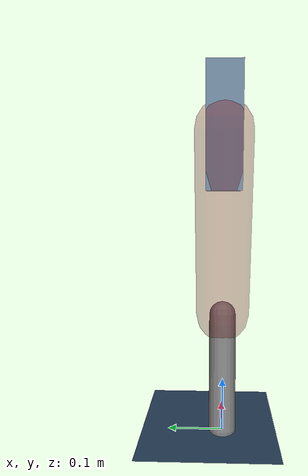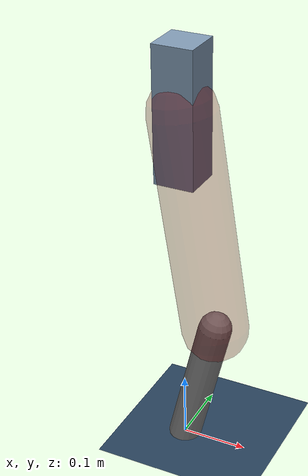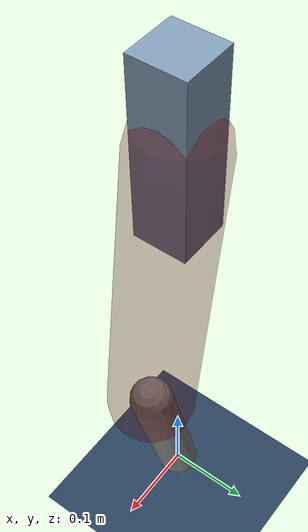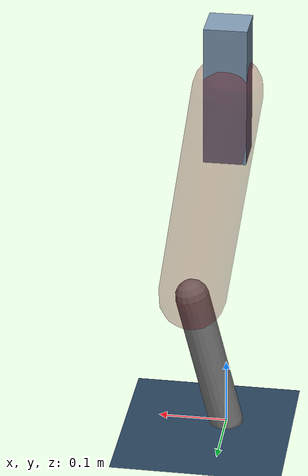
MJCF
<mujoco model="Hopper2D">
	<compiler inertiafromgeom="true" angle="radian" />
	<option timestep="0.001" integrator="implicit" cone="elliptic" solver="Newton" tolerance="1e-10" />

	<default>
		<geom contype="1" conaffinity="1" condim="3" friction="2 0.005 0.0001" solref="0.005 1" />
		<joint limited="true" damping="0.1" />
	</default>

	<asset>
		<texture name="skybox" type="skybox" builtin="gradient" rgb1=".4 .6 .8" rgb2="0 0 0" width="800" height="800" />
		<texture name="grid" type="2d" builtin="checker" rgb1=".1 .2 .3" rgb2=".2 .3 .4" width="300" height="300" mark="edge" markrgb=".2 .3 .4" />
		<material name="ground" texture="grid" texrepeat="1 1" texuniform="true" reflectance="0.1" />
		<material name="leg" rgba="0.5 0.6 0.7 1" />
	</asset>

	<worldbody>

		<geom name="floor" type="plane" size="5 5 0.25" material="ground" />

		<light directional="false" diffuse="0.8 0.8 0.8" specular="0.3 0.3 0.3" pos="0 0 2" dir="0 0 -1" />
		<light mode="targetbodycom" target="base" directional="false" diffuse="0.8 0.8 0.8" specular="0.3 0.3 0.3" pos="0 0 2" dir="0 0 -1" />

		<camera name="fixed" pos="0 -2 1" xyaxes="1 0 0 0 0 1" />
		<camera name="tracking" mode="trackcom" pos="0 -3 1" />

		<body name="root" pos="0 0 0.5397169737044044">
			<joint name="slide_x" type="slide" axis="1 0 0" range="-100 100" />
			<joint name="slide_z" type="slide" axis="0 0 1" range="0 10" />

			<body name="base" pos="0 0 0">
				<geom name="torso" type="box" size="0.03 0.03 0.1" mass="2.508" material="leg" />

				<body name="link1" pos="0 0 0" euler="0 1.4187800762496898 0">
					<joint type="hinge" axis="0 -1 0" pos="0 0 0" name="hinge1" limited="true" range="-3.14 3.14" stiffness="0" damping="0.1" />
					<geom name="thigh" type="capsule" fromto="0 0 0 0.3357446673694527 0 0" size="0.05" rgba="0.5 0 0 0.3" mass="1.0867850686344673" />

					<body name="link2" pos="0.3357446673694527 0 0" euler="0 0.3919225179422134 0">
						<joint type="hinge" axis="0 -1 0" pos="0 0 0" name="hinge2" limited="true" range="-3.14 3.14" stiffness="0" damping="0.1" />
						<geom name="shank" type="capsule" fromto="0 0 0 0.21397230633495173 0 0" size="0.025" mass="0.41267507570145656" />

					</body>
				</body>
			</body>
		</body>
	</worldbody>

	<actuator>
		<motor name="torque1" joint="hinge1" ctrlrange="-103.21618184385763 103.21618184385763" ctrllimited="true" gear="1" />
		<motor name="torque2" joint="hinge2" ctrlrange="-90.01785050819973 90.01785050819973" ctrllimited="true" gear="1" />
	</actuator>
</mujoco>
